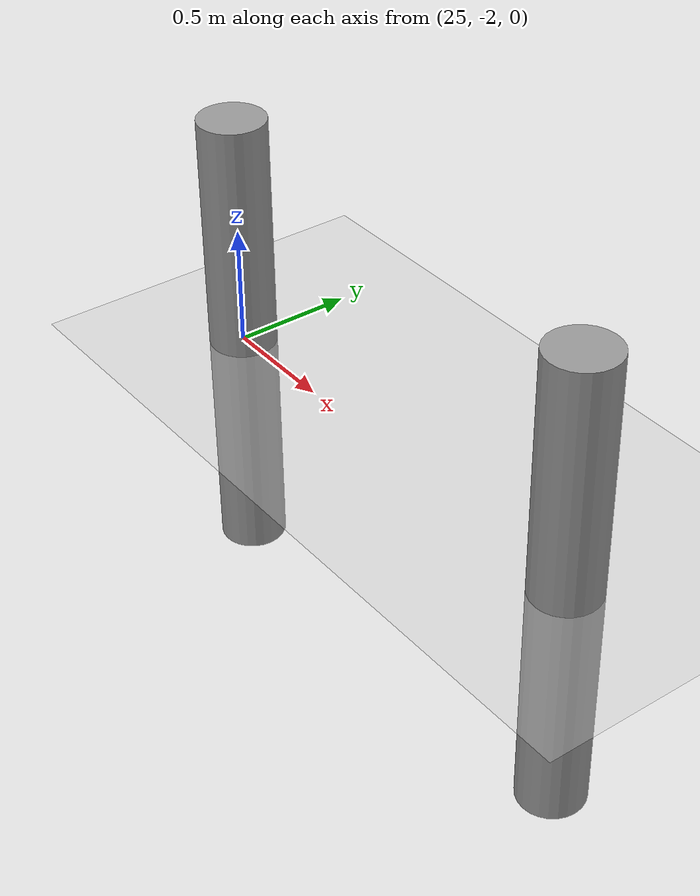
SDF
<sdf version="1.6">
 <world name="default">
  <model name="ground_plane">
   <static>1</static>
   <link name="link">
    <collision name="collision">
     <geometry><plane><normal>0 0 1</normal><size>100 100</size></plane></geometry>
     <surface><friction><ode><mu>100</mu><mu2>50</mu2></ode></friction></surface>
    </collision>
    <visual name="visual">
     <cast_shadows>0</cast_shadows>
     <geometry><plane><normal>0 0 1</normal><size>100 100</size></plane></geometry>
     <material>
      <script><uri>file://media/materials/scripts/gazebo.material</uri><name>Gazebo/Grey</name></script>
     </material>
    </visual>
   </link>
  </model>
  <model name="my_cylinder014_clone_11_0">
   <pose>27 -2 0 0 -0 0</pose>
   <link name="my_cylinder014::link">
    <inertial>
     <mass>1</mass>
     <inertia><ixx>0.145833</ixx><ixy>0</ixy><ixz>0</ixz><iyy>0.145833</iyy><iyz>0</iyz><izz>0.125</izz></inertia>
    </inertial>
    <visual name="visual">
     <geometry><cylinder><radius>0.14</radius><length>2</length></cylinder></geometry>
     <material>
      <script><name>Gazebo/Grey</name><uri>file://media/materials/scripts/gazebo.material</uri></script>
      <ambient>0.3 0.3 0.3 1</ambient>
      <diffuse>0.7 0.7 0.7 1</diffuse>
      <specular>1 0.01 0.01 1</specular>
      <emissive>0 0 0 1</emissive>
      <shader type="vertex"><normal_map>__default__</normal_map></shader>
     </material>
    </visual>
    <collision name="collision">
     <geometry><cylinder><radius>0.14</radius><length>2</length></cylinder></geometry>
     <surface>
      <friction>
       <ode><mu>1</mu><mu2>1</mu2><fdir1>0 0 0</fdir1><slip1>0</slip1><slip2>0</slip2></ode>
       <torsional>
        <coefficient>1</coefficient>
        <patch_radius>0</patch_radius>
        <surface_radius>0</surface_radius>
        <use_patch_radius>1</use_patch_radius>
        <ode><slip>0</slip></ode>
       </torsional>
      </friction>
      <bounce><restitution_coefficient>0</restitution_coefficient><threshold>1e+06</threshold></bounce>
      <contact>
       <collide_without_contact>0</collide_without_contact>
       <collide_without_contact_bitmask>1</collide_without_contact_bitmask>
       <collide_bitmask>1</collide_bitmask>
       <ode>
        <soft_cfm>0</soft_cfm>
        <soft_erp>0.2</soft_erp>
        <kp>1e+13</kp>
        <kd>1</kd>
        <max_vel>0.01</max_vel>
        <min_depth>0</min_depth>
       </ode>
       <bullet>
        <split_impulse>1</split_impulse>
        <split_impulse_penetration_threshold>-0.01</split_impulse_penetration_threshold>
        <soft_cfm>0</soft_cfm>
        <soft_erp>0.2</soft_erp>
        <kp>1e+13</kp>
        <kd>1</kd>
       </bullet>
      </contact>
     </surface>
    </collision>
   </link>
   <static>1</static>
  </model>
  <model name="my_cylinder014_clone_10_1">
   <pose>25 -2 0 0 -0 0</pose>
   <link name="my_cylinder014::link">
    <inertial>
     <mass>1</mass>
     <inertia><ixx>0.145833</ixx><ixy>0</ixy><ixz>0</ixz><iyy>0.145833</iyy><iyz>0</iyz><izz>0.125</izz></inertia>
    </inertial>
    <visual name="visual">
     <geometry><cylinder><radius>0.14</radius><length>2</length></cylinder></geometry>
     <material>
      <script><name>Gazebo/Grey</name><uri>file://media/materials/scripts/gazebo.material</uri></script>
      <ambient>0.3 0.3 0.3 1</ambient>
      <diffuse>0.7 0.7 0.7 1</diffuse>
      <specular>1 0.01 0.01 1</specular>
      <emissive>0 0 0 1</emissive>
      <shader type="vertex"><normal_map>__default__</normal_map></shader>
     </material>
    </visual>
    <collision name="collision">
     <geometry><cylinder><radius>0.14</radius><length>2</length></cylinder></geometry>
     <surface>
      <friction>
       <ode><mu>1</mu><mu2>1</mu2><fdir1>0 0 0</fdir1><slip1>0</slip1><slip2>0</slip2></ode>
       <torsional>
        <coefficient>1</coefficient>
        <patch_radius>0</patch_radius>
        <surface_radius>0</surface_radius>
        <use_patch_radius>1</use_patch_radius>
        <ode><slip>0</slip></ode>
       </torsional>
      </friction>
      <bounce><restitution_coefficient>0</restitution_coefficient><threshold>1e+06</threshold></bounce>
      <contact>
       <collide_without_contact>0</collide_without_contact>
       <collide_without_contact_bitmask>1</collide_without_contact_bitmask>
       <collide_bitmask>1</collide_bitmask>
       <ode>
        <soft_cfm>0</soft_cfm>
        <soft_erp>0.2</soft_erp>
        <kp>1e+13</kp>
        <kd>1</kd>
        <max_vel>0.01</max_vel>
        <min_depth>0</min_depth>
       </ode>
       <bullet>
        <split_impulse>1</split_impulse>
        <split_impulse_penetration_threshold>-0.01</split_impulse_penetration_threshold>
        <soft_cfm>0</soft_cfm>
        <soft_erp>0.2</soft_erp>
        <kp>1e+13</kp>
        <kd>1</kd>
       </bullet>
      </contact>
     </surface>
    </collision>
   </link>
   <static>1</static>
  </model>
  <model name="my_cylinder014_clone_10_1">
   <pose>25 -2 0 0 -0 0</pose>
   <link name="my_cylinder014::link">
    <inertial>
     <mass>1</mass>
     <inertia><ixx>0.145833</ixx><ixy>0</ixy><ixz>0</ixz><iyy>0.145833</iyy><iyz>0</iyz><izz>0.125</izz></inertia>
    </inertial>
    <visual name="visual">
     <geometry><cylinder><radius>0.14</radius><length>2</length></cylinder></geometry>
     <material>
      <script><name>Gazebo/Grey</name><uri>file://media/materials/scripts/gazebo.material</uri></script>
      <ambient>0.3 0.3 0.3 1</ambient>
      <diffuse>0.7 0.7 0.7 1</diffuse>
      <specular>1 0.01 0.01 1</specular>
      <emissive>0 0 0 1</emissive>
      <shader type="vertex"><normal_map>__default__</normal_map></shader>
     </material>
    </visual>
    <collision name="collision">
     <geometry><cylinder><radius>0.14</radius><length>2</length></cylinder></geometry>
     <surface>
      <friction>
       <ode><mu>1</mu><mu2>1</mu2><fdir1>0 0 0</fdir1><slip1>0</slip1><slip2>0</slip2></ode>
       <torsional>
        <coefficient>1</coefficient>
        <patch_radius>0</patch_radius>
        <surface_radius>0</surface_radius>
        <use_patch_radius>1</use_patch_radius>
        <ode><slip>0</slip></ode>
       </torsional>
      </friction>
      <bounce><restitution_coefficient>0</restitution_coefficient><threshold>1e+06</threshold></bounce>
      <contact>
       <collide_without_contact>0</collide_without_contact>
       <collide_without_contact_bitmask>1</collide_without_contact_bitmask>
       <collide_bitmask>1</collide_bitmask>
       <ode>
        <soft_cfm>0</soft_cfm>
        <soft_erp>0.2</soft_erp>
        <kp>1e+13</kp>
        <kd>1</kd>
        <max_vel>0.01</max_vel>
        <min_depth>0</min_depth>
       </ode>
       <bullet>
        <split_impulse>1</split_impulse>
        <split_impulse_penetration_threshold>-0.01</split_impulse_penetration_threshold>
        <soft_cfm>0</soft_cfm>
        <soft_erp>0.2</soft_erp>
        <kp>1e+13</kp>
        <kd>1</kd>
       </bullet>
      </contact>
     </surface>
    </collision>
   </link>
   <static>1</static>
  </model>
 </world>
</sdf>
